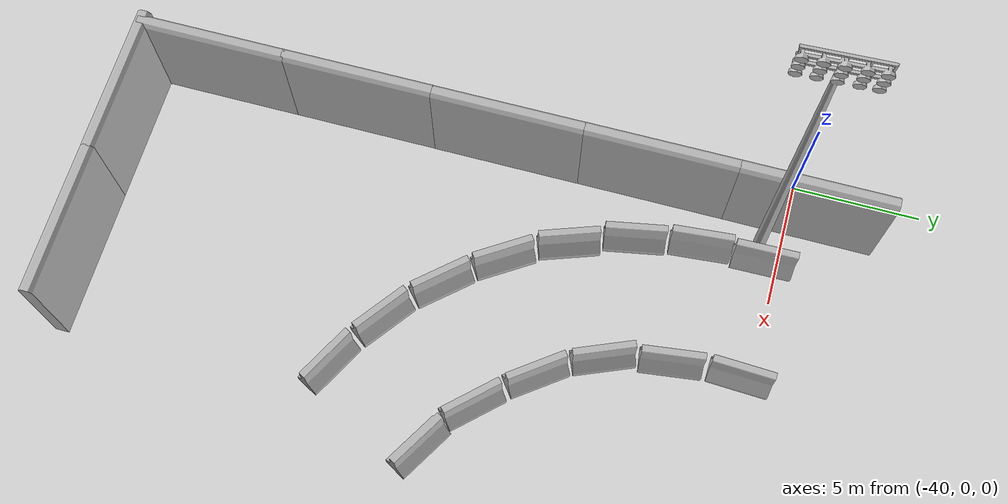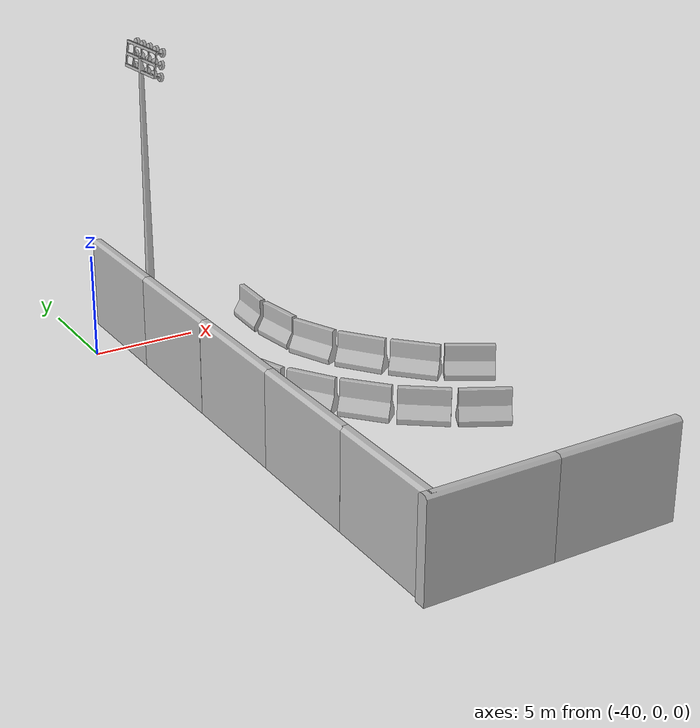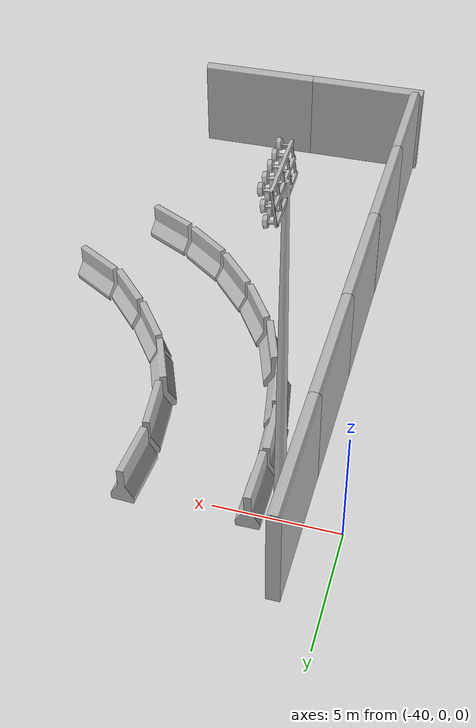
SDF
<sdf version="1.7">
 <world name="default">
  <model name="aws_robomaker_racetrack_StonePier_01_41">
   <frame name="aws_StonePier_01::__model__" attached_to="aws_StonePier_01::body">
    <pose relative_to="__model__">0 0 0 0 -0 0</pose>
   </frame>
   <link name="aws_StonePier_01::body">
    <pose relative_to="aws_StonePier_01::__model__">0 0 0 0 -0 0</pose>
    <inertial>
     <mass>10</mass>
     <inertia><ixx>0</ixx><ixy>0</ixy><ixz>0</ixz><iyy>0</iyy><iyz>0</iyz><izz>0</izz></inertia>
    </inertial>
    <visual name="visual">
     <geometry>
      <mesh><uri>file://models/aws_robomaker_racetrack_StonePier_01/meshes/aws_StonePier_01_visual.DAE</uri></mesh>
     </geometry>
     <material><shader type="pixel"><normal_map>__default__</normal_map></shader></material>
     <meta><layer>0</layer></meta>
    </visual>
    <collision name="collision_0">
     <geometry>
      <mesh>
       <uri>file://models/aws_robomaker_racetrack_StonePier_01/meshes/aws_StonePier_01_collision.DAE</uri>
       <scale>1 1 1</scale>
      </mesh>
     </geometry>
     <surface>
      <friction>
       <ode><mu>1</mu><mu2>1</mu2><fdir1>0 0 0</fdir1><slip1>0</slip1><slip2>0</slip2></ode>
       <torsional>
        <coefficient>1</coefficient>
        <patch_radius>0</patch_radius>
        <surface_radius>0</surface_radius>
        <use_patch_radius>1</use_patch_radius>
        <ode><slip>0</slip></ode>
       </torsional>
      </friction>
      <bounce><restitution_coefficient>0</restitution_coefficient><threshold>1e+06</threshold></bounce>
      <contact>
       <collide_without_contact>0</collide_without_contact>
       <collide_without_contact_bitmask>1</collide_without_contact_bitmask>
       <collide_bitmask>1</collide_bitmask>
       <ode>
        <soft_cfm>0</soft_cfm>
        <soft_erp>0.2</soft_erp>
        <kp>1e+13</kp>
        <kd>1</kd>
        <max_vel>0.01</max_vel>
        <min_depth>0</min_depth>
       </ode>
       <bullet>
        <split_impulse>1</split_impulse>
        <split_impulse_penetration_threshold>-0.01</split_impulse_penetration_threshold>
        <soft_cfm>0</soft_cfm>
        <soft_erp>0.2</soft_erp>
        <kp>1e+13</kp>
        <kd>1</kd>
       </bullet>
      </contact>
     </surface>
    </collision>
   </link>
   <static>1</static>
   <pose>-26.1157 -11.2238 0.054 0 0 -0.528829</pose>
  </model>
  <model name="aws_robomaker_racetrack_StonePier_01_42">
   <frame name="aws_StonePier_01::__model__" attached_to="aws_StonePier_01::body">
    <pose relative_to="__model__">0 0 0 0 -0 0</pose>
   </frame>
   <link name="aws_StonePier_01::body">
    <pose relative_to="aws_StonePier_01::__model__">0 0 0 0 -0 0</pose>
    <inertial>
     <mass>10</mass>
     <inertia><ixx>0</ixx><ixy>0</ixy><ixz>0</ixz><iyy>0</iyy><iyz>0</iyz><izz>0</izz></inertia>
    </inertial>
    <visual name="visual">
     <geometry>
      <mesh><uri>file://models/aws_robomaker_racetrack_StonePier_01/meshes/aws_StonePier_01_visual.DAE</uri></mesh>
     </geometry>
     <material><shader type="pixel"><normal_map>__default__</normal_map></shader></material>
     <meta><layer>0</layer></meta>
    </visual>
    <collision name="collision_0">
     <geometry>
      <mesh>
       <uri>file://models/aws_robomaker_racetrack_StonePier_01/meshes/aws_StonePier_01_collision.DAE</uri>
       <scale>1 1 1</scale>
      </mesh>
     </geometry>
     <surface>
      <friction>
       <ode><mu>1</mu><mu2>1</mu2><fdir1>0 0 0</fdir1><slip1>0</slip1><slip2>0</slip2></ode>
       <torsional>
        <coefficient>1</coefficient>
        <patch_radius>0</patch_radius>
        <surface_radius>0</surface_radius>
        <use_patch_radius>1</use_patch_radius>
        <ode><slip>0</slip></ode>
       </torsional>
      </friction>
      <bounce><restitution_coefficient>0</restitution_coefficient><threshold>1e+06</threshold></bounce>
      <contact>
       <collide_without_contact>0</collide_without_contact>
       <collide_without_contact_bitmask>1</collide_without_contact_bitmask>
       <collide_bitmask>1</collide_bitmask>
       <ode>
        <soft_cfm>0</soft_cfm>
        <soft_erp>0.2</soft_erp>
        <kp>1e+13</kp>
        <kd>1</kd>
        <max_vel>0.01</max_vel>
        <min_depth>0</min_depth>
       </ode>
       <bullet>
        <split_impulse>1</split_impulse>
        <split_impulse_penetration_threshold>-0.01</split_impulse_penetration_threshold>
        <soft_cfm>0</soft_cfm>
        <soft_erp>0.2</soft_erp>
        <kp>1e+13</kp>
        <kd>1</kd>
       </bullet>
      </contact>
     </surface>
    </collision>
   </link>
   <static>1</static>
   <pose>-28.1466 -9.75745 0.054 0 0 -0.811127</pose>
  </model>
  <model name="aws_robomaker_racetrack_StonePier_01_43">
   <frame name="aws_StonePier_01::__model__" attached_to="aws_StonePier_01::body">
    <pose relative_to="__model__">0 0 0 0 -0 0</pose>
   </frame>
   <link name="aws_StonePier_01::body">
    <pose relative_to="aws_StonePier_01::__model__">0 0 0 0 -0 0</pose>
    <inertial>
     <mass>10</mass>
     <inertia><ixx>0</ixx><ixy>0</ixy><ixz>0</ixz><iyy>0</iyy><iyz>0</iyz><izz>0</izz></inertia>
    </inertial>
    <visual name="visual">
     <geometry>
      <mesh><uri>file://models/aws_robomaker_racetrack_StonePier_01/meshes/aws_StonePier_01_visual.DAE</uri></mesh>
     </geometry>
     <material><shader type="pixel"><normal_map>__default__</normal_map></shader></material>
     <meta><layer>0</layer></meta>
    </visual>
    <collision name="collision_0">
     <geometry>
      <mesh>
       <uri>file://models/aws_robomaker_racetrack_StonePier_01/meshes/aws_StonePier_01_collision.DAE</uri>
       <scale>1 1 1</scale>
      </mesh>
     </geometry>
     <surface>
      <friction>
       <ode><mu>1</mu><mu2>1</mu2><fdir1>0 0 0</fdir1><slip1>0</slip1><slip2>0</slip2></ode>
       <torsional>
        <coefficient>1</coefficient>
        <patch_radius>0</patch_radius>
        <surface_radius>0</surface_radius>
        <use_patch_radius>1</use_patch_radius>
        <ode><slip>0</slip></ode>
       </torsional>
      </friction>
      <bounce><restitution_coefficient>0</restitution_coefficient><threshold>1e+06</threshold></bounce>
      <contact>
       <collide_without_contact>0</collide_without_contact>
       <collide_without_contact_bitmask>1</collide_without_contact_bitmask>
       <collide_bitmask>1</collide_bitmask>
       <ode>
        <soft_cfm>0</soft_cfm>
        <soft_erp>0.2</soft_erp>
        <kp>1e+13</kp>
        <kd>1</kd>
        <max_vel>0.01</max_vel>
        <min_depth>0</min_depth>
       </ode>
       <bullet>
        <split_impulse>1</split_impulse>
        <split_impulse_penetration_threshold>-0.01</split_impulse_penetration_threshold>
        <soft_cfm>0</soft_cfm>
        <soft_erp>0.2</soft_erp>
        <kp>1e+13</kp>
        <kd>1</kd>
       </bullet>
      </contact>
     </surface>
    </collision>
   </link>
   <static>1</static>
   <pose>-29.8572 -7.79098 0.054 0 0 -0.924577</pose>
  </model>
  <model name="aws_robomaker_racetrack_StonePier_01_44">
   <frame name="aws_StonePier_01::__model__" attached_to="aws_StonePier_01::body">
    <pose relative_to="__model__">0 0 0 0 -0 0</pose>
   </frame>
   <link name="aws_StonePier_01::body">
    <pose relative_to="aws_StonePier_01::__model__">0 0 0 0 -0 0</pose>
    <inertial>
     <mass>10</mass>
     <inertia><ixx>0</ixx><ixy>0</ixy><ixz>0</ixz><iyy>0</iyy><iyz>0</iyz><izz>0</izz></inertia>
    </inertial>
    <visual name="visual">
     <geometry>
      <mesh><uri>file://models/aws_robomaker_racetrack_StonePier_01/meshes/aws_StonePier_01_visual.DAE</uri></mesh>
     </geometry>
     <material><shader type="pixel"><normal_map>__default__</normal_map></shader></material>
     <meta><layer>0</layer></meta>
    </visual>
    <collision name="collision_0">
     <geometry>
      <mesh>
       <uri>file://models/aws_robomaker_racetrack_StonePier_01/meshes/aws_StonePier_01_collision.DAE</uri>
       <scale>1 1 1</scale>
      </mesh>
     </geometry>
     <surface>
      <friction>
       <ode><mu>1</mu><mu2>1</mu2><fdir1>0 0 0</fdir1><slip1>0</slip1><slip2>0</slip2></ode>
       <torsional>
        <coefficient>1</coefficient>
        <patch_radius>0</patch_radius>
        <surface_radius>0</surface_radius>
        <use_patch_radius>1</use_patch_radius>
        <ode><slip>0</slip></ode>
       </torsional>
      </friction>
      <bounce><restitution_coefficient>0</restitution_coefficient><threshold>1e+06</threshold></bounce>
      <contact>
       <collide_without_contact>0</collide_without_contact>
       <collide_without_contact_bitmask>1</collide_without_contact_bitmask>
       <collide_bitmask>1</collide_bitmask>
       <ode>
        <soft_cfm>0</soft_cfm>
        <soft_erp>0.2</soft_erp>
        <kp>1e+13</kp>
        <kd>1</kd>
        <max_vel>0.01</max_vel>
        <min_depth>0</min_depth>
       </ode>
       <bullet>
        <split_impulse>1</split_impulse>
        <split_impulse_penetration_threshold>-0.01</split_impulse_penetration_threshold>
        <soft_cfm>0</soft_cfm>
        <soft_erp>0.2</soft_erp>
        <kp>1e+13</kp>
        <kd>1</kd>
       </bullet>
      </contact>
     </surface>
    </collision>
   </link>
   <static>1</static>
   <pose>-31.1336 -5.56451 0.054 0 0 -1.16956</pose>
  </model>
  <model name="aws_robomaker_racetrack_StonePier_01_45">
   <frame name="aws_StonePier_01::__model__" attached_to="aws_StonePier_01::body">
    <pose relative_to="__model__">0 0 0 0 -0 0</pose>
   </frame>
   <link name="aws_StonePier_01::body">
    <pose relative_to="aws_StonePier_01::__model__">0 0 0 0 -0 0</pose>
    <inertial>
     <mass>10</mass>
     <inertia><ixx>0</ixx><ixy>0</ixy><ixz>0</ixz><iyy>0</iyy><iyz>0</iyz><izz>0</izz></inertia>
    </inertial>
    <visual name="visual">
     <geometry>
      <mesh><uri>file://models/aws_robomaker_racetrack_StonePier_01/meshes/aws_StonePier_01_visual.DAE</uri></mesh>
     </geometry>
     <material><shader type="pixel"><normal_map>__default__</normal_map></shader></material>
     <meta><layer>0</layer></meta>
    </visual>
    <collision name="collision_0">
     <geometry>
      <mesh>
       <uri>file://models/aws_robomaker_racetrack_StonePier_01/meshes/aws_StonePier_01_collision.DAE</uri>
       <scale>1 1 1</scale>
      </mesh>
     </geometry>
     <surface>
      <friction>
       <ode><mu>1</mu><mu2>1</mu2><fdir1>0 0 0</fdir1><slip1>0</slip1><slip2>0</slip2></ode>
       <torsional>
        <coefficient>1</coefficient>
        <patch_radius>0</patch_radius>
        <surface_radius>0</surface_radius>
        <use_patch_radius>1</use_patch_radius>
        <ode><slip>0</slip></ode>
       </torsional>
      </friction>
      <bounce><restitution_coefficient>0</restitution_coefficient><threshold>1e+06</threshold></bounce>
      <contact>
       <collide_without_contact>0</collide_without_contact>
       <collide_without_contact_bitmask>1</collide_without_contact_bitmask>
       <collide_bitmask>1</collide_bitmask>
       <ode>
        <soft_cfm>0</soft_cfm>
        <soft_erp>0.2</soft_erp>
        <kp>1e+13</kp>
        <kd>1</kd>
        <max_vel>0.01</max_vel>
        <min_depth>0</min_depth>
       </ode>
       <bullet>
        <split_impulse>1</split_impulse>
        <split_impulse_penetration_threshold>-0.01</split_impulse_penetration_threshold>
        <soft_cfm>0</soft_cfm>
        <soft_erp>0.2</soft_erp>
        <kp>1e+13</kp>
        <kd>1</kd>
       </bullet>
      </contact>
     </surface>
    </collision>
   </link>
   <static>1</static>
   <pose>-31.6395 -3.07904 0.054 0 0 -1.43795</pose>
  </model>
  <model name="aws_robomaker_racetrack_StonePier_01_46">
   <frame name="aws_StonePier_01::__model__" attached_to="aws_StonePier_01::body">
    <pose relative_to="__model__">0 0 0 0 -0 0</pose>
   </frame>
   <link name="aws_StonePier_01::body">
    <pose relative_to="aws_StonePier_01::__model__">0 0 0 0 -0 0</pose>
    <inertial>
     <mass>10</mass>
     <inertia><ixx>0</ixx><ixy>0</ixy><ixz>0</ixz><iyy>0</iyy><iyz>0</iyz><izz>0</izz></inertia>
    </inertial>
    <visual name="visual">
     <geometry>
      <mesh><uri>file://models/aws_robomaker_racetrack_StonePier_01/meshes/aws_StonePier_01_visual.DAE</uri></mesh>
     </geometry>
     <material><shader type="pixel"><normal_map>__default__</normal_map></shader></material>
     <meta><layer>0</layer></meta>
    </visual>
    <collision name="collision_0">
     <geometry>
      <mesh>
       <uri>file://models/aws_robomaker_racetrack_StonePier_01/meshes/aws_StonePier_01_collision.DAE</uri>
       <scale>1 1 1</scale>
      </mesh>
     </geometry>
     <surface>
      <friction>
       <ode><mu>1</mu><mu2>1</mu2><fdir1>0 0 0</fdir1><slip1>0</slip1><slip2>0</slip2></ode>
       <torsional>
        <coefficient>1</coefficient>
        <patch_radius>0</patch_radius>
        <surface_radius>0</surface_radius>
        <use_patch_radius>1</use_patch_radius>
        <ode><slip>0</slip></ode>
       </torsional>
      </friction>
      <bounce><restitution_coefficient>0</restitution_coefficient><threshold>1e+06</threshold></bounce>
      <contact>
       <collide_without_contact>0</collide_without_contact>
       <collide_without_contact_bitmask>1</collide_without_contact_bitmask>
       <collide_bitmask>1</collide_bitmask>
       <ode>
        <soft_cfm>0</soft_cfm>
        <soft_erp>0.2</soft_erp>
        <kp>1e+13</kp>
        <kd>1</kd>
        <max_vel>0.01</max_vel>
        <min_depth>0</min_depth>
       </ode>
       <bullet>
        <split_impulse>1</split_impulse>
        <split_impulse_penetration_threshold>-0.01</split_impulse_penetration_threshold>
        <soft_cfm>0</soft_cfm>
        <soft_erp>0.2</soft_erp>
        <kp>1e+13</kp>
        <kd>1</kd>
       </bullet>
      </contact>
     </surface>
    </collision>
   </link>
   <static>1</static>
   <pose>-31.7709 -0.48849 0.054 0 0 -1.61074</pose>
  </model>
  <model name="aws_robomaker_racetrack_StonePier_01_52">
   <frame name="aws_StonePier_01::__model__" attached_to="aws_StonePier_01::body">
    <pose relative_to="__model__">0 0 0 0 -0 0</pose>
   </frame>
   <link name="aws_StonePier_01::body">
    <pose relative_to="aws_StonePier_01::__model__">0 0 0 0 -0 0</pose>
    <inertial>
     <mass>10</mass>
     <inertia><ixx>0</ixx><ixy>0</ixy><ixz>0</ixz><iyy>0</iyy><iyz>0</iyz><izz>0</izz></inertia>
    </inertial>
    <visual name="visual">
     <geometry>
      <mesh><uri>file://models/aws_robomaker_racetrack_StonePier_01/meshes/aws_StonePier_01_visual.DAE</uri></mesh>
     </geometry>
     <material><shader type="pixel"><normal_map>__default__</normal_map></shader></material>
     <meta><layer>0</layer></meta>
    </visual>
    <collision name="collision_0">
     <geometry>
      <mesh>
       <uri>file://models/aws_robomaker_racetrack_StonePier_01/meshes/aws_StonePier_01_collision.DAE</uri>
       <scale>1 1 1</scale>
      </mesh>
     </geometry>
     <surface>
      <friction>
       <ode><mu>1</mu><mu2>1</mu2><fdir1>0 0 0</fdir1><slip1>0</slip1><slip2>0</slip2></ode>
       <torsional>
        <coefficient>1</coefficient>
        <patch_radius>0</patch_radius>
        <surface_radius>0</surface_radius>
        <use_patch_radius>1</use_patch_radius>
        <ode><slip>0</slip></ode>
       </torsional>
      </friction>
      <bounce><restitution_coefficient>0</restitution_coefficient><threshold>1e+06</threshold></bounce>
      <contact>
       <collide_without_contact>0</collide_without_contact>
       <collide_without_contact_bitmask>1</collide_without_contact_bitmask>
       <collide_bitmask>1</collide_bitmask>
       <ode>
        <soft_cfm>0</soft_cfm>
        <soft_erp>0.2</soft_erp>
        <kp>1e+13</kp>
        <kd>1</kd>
        <max_vel>0.01</max_vel>
        <min_depth>0</min_depth>
       </ode>
       <bullet>
        <split_impulse>1</split_impulse>
        <split_impulse_penetration_threshold>-0.01</split_impulse_penetration_threshold>
        <soft_cfm>0</soft_cfm>
        <soft_erp>0.2</soft_erp>
        <kp>1e+13</kp>
        <kd>1</kd>
       </bullet>
      </contact>
     </surface>
    </collision>
   </link>
   <static>1</static>
   <pose>-28.2666 -15.3279 0.054 0 0.00036 -0.483595</pose>
  </model>
  <model name="aws_robomaker_racetrack_StonePier_01_53">
   <frame name="aws_StonePier_01::__model__" attached_to="aws_StonePier_01::body">
    <pose relative_to="__model__">0 0 0 0 -0 0</pose>
   </frame>
   <link name="aws_StonePier_01::body">
    <pose relative_to="aws_StonePier_01::__model__">0 0 0 0 -0 0</pose>
    <inertial>
     <mass>10</mass>
     <inertia><ixx>0</ixx><ixy>0</ixy><ixz>0</ixz><iyy>0</iyy><iyz>0</iyz><izz>0</izz></inertia>
    </inertial>
    <visual name="visual">
     <geometry>
      <mesh><uri>file://models/aws_robomaker_racetrack_StonePier_01/meshes/aws_StonePier_01_visual.DAE</uri></mesh>
     </geometry>
     <material><shader type="pixel"><normal_map>__default__</normal_map></shader></material>
     <meta><layer>0</layer></meta>
    </visual>
    <collision name="collision_0">
     <geometry>
      <mesh>
       <uri>file://models/aws_robomaker_racetrack_StonePier_01/meshes/aws_StonePier_01_collision.DAE</uri>
       <scale>1 1 1</scale>
      </mesh>
     </geometry>
     <surface>
      <friction>
       <ode><mu>1</mu><mu2>1</mu2><fdir1>0 0 0</fdir1><slip1>0</slip1><slip2>0</slip2></ode>
       <torsional>
        <coefficient>1</coefficient>
        <patch_radius>0</patch_radius>
        <surface_radius>0</surface_radius>
        <use_patch_radius>1</use_patch_radius>
        <ode><slip>0</slip></ode>
       </torsional>
      </friction>
      <bounce><restitution_coefficient>0</restitution_coefficient><threshold>1e+06</threshold></bounce>
      <contact>
       <collide_without_contact>0</collide_without_contact>
       <collide_without_contact_bitmask>1</collide_without_contact_bitmask>
       <collide_bitmask>1</collide_bitmask>
       <ode>
        <soft_cfm>0</soft_cfm>
        <soft_erp>0.2</soft_erp>
        <kp>1e+13</kp>
        <kd>1</kd>
        <max_vel>0.01</max_vel>
        <min_depth>0</min_depth>
       </ode>
       <bullet>
        <split_impulse>1</split_impulse>
        <split_impulse_penetration_threshold>-0.01</split_impulse_penetration_threshold>
        <soft_cfm>0</soft_cfm>
        <soft_erp>0.2</soft_erp>
        <kp>1e+13</kp>
        <kd>1</kd>
       </bullet>
      </contact>
     </surface>
    </collision>
   </link>
   <static>1</static>
   <pose>-30.4813 -13.931 0.054 0 -0 2.50624</pose>
  </model>
  <model name="aws_robomaker_racetrack_StonePier_01_54">
   <frame name="aws_StonePier_01::__model__" attached_to="aws_StonePier_01::body">
    <pose relative_to="__model__">0 0 0 0 -0 0</pose>
   </frame>
   <link name="aws_StonePier_01::body">
    <pose relative_to="aws_StonePier_01::__model__">0 0 0 0 -0 0</pose>
    <inertial>
     <mass>10</mass>
     <inertia><ixx>0</ixx><ixy>0</ixy><ixz>0</ixz><iyy>0</iyy><iyz>0</iyz><izz>0</izz></inertia>
    </inertial>
    <visual name="visual">
     <geometry>
      <mesh><uri>file://models/aws_robomaker_racetrack_StonePier_01/meshes/aws_StonePier_01_visual.DAE</uri></mesh>
     </geometry>
     <material><shader type="pixel"><normal_map>__default__</normal_map></shader></material>
     <meta><layer>0</layer></meta>
    </visual>
    <collision name="collision_0">
     <geometry>
      <mesh>
       <uri>file://models/aws_robomaker_racetrack_StonePier_01/meshes/aws_StonePier_01_collision.DAE</uri>
       <scale>1 1 1</scale>
      </mesh>
     </geometry>
     <surface>
      <friction>
       <ode><mu>1</mu><mu2>1</mu2><fdir1>0 0 0</fdir1><slip1>0</slip1><slip2>0</slip2></ode>
       <torsional>
        <coefficient>1</coefficient>
        <patch_radius>0</patch_radius>
        <surface_radius>0</surface_radius>
        <use_patch_radius>1</use_patch_radius>
        <ode><slip>0</slip></ode>
       </torsional>
      </friction>
      <bounce><restitution_coefficient>0</restitution_coefficient><threshold>1e+06</threshold></bounce>
      <contact>
       <collide_without_contact>0</collide_without_contact>
       <collide_without_contact_bitmask>1</collide_without_contact_bitmask>
       <collide_bitmask>1</collide_bitmask>
       <ode>
        <soft_cfm>0</soft_cfm>
        <soft_erp>0.2</soft_erp>
        <kp>1e+13</kp>
        <kd>1</kd>
        <max_vel>0.01</max_vel>
        <min_depth>0</min_depth>
       </ode>
       <bullet>
        <split_impulse>1</split_impulse>
        <split_impulse_penetration_threshold>-0.01</split_impulse_penetration_threshold>
        <soft_cfm>0</soft_cfm>
        <soft_erp>0.2</soft_erp>
        <kp>1e+13</kp>
        <kd>1</kd>
       </bullet>
      </contact>
     </surface>
    </collision>
   </link>
   <static>1</static>
   <pose>-32.3931 -12.181 0.054 0 -0 2.30053</pose>
  </model>
  <model name="aws_robomaker_racetrack_StonePier_01_55">
   <frame name="aws_StonePier_01::__model__" attached_to="aws_StonePier_01::body">
    <pose relative_to="__model__">0 0 0 0 -0 0</pose>
   </frame>
   <link name="aws_StonePier_01::body">
    <pose relative_to="aws_StonePier_01::__model__">0 0 0 0 -0 0</pose>
    <inertial>
     <mass>10</mass>
     <inertia><ixx>0</ixx><ixy>0</ixy><ixz>0</ixz><iyy>0</iyy><iyz>0</iyz><izz>0</izz></inertia>
    </inertial>
    <visual name="visual">
     <geometry>
      <mesh><uri>file://models/aws_robomaker_racetrack_StonePier_01/meshes/aws_StonePier_01_visual.DAE</uri></mesh>
     </geometry>
     <material><shader type="pixel"><normal_map>__default__</normal_map></shader></material>
     <meta><layer>0</layer></meta>
    </visual>
    <collision name="collision_0">
     <geometry>
      <mesh>
       <uri>file://models/aws_robomaker_racetrack_StonePier_01/meshes/aws_StonePier_01_collision.DAE</uri>
       <scale>1 1 1</scale>
      </mesh>
     </geometry>
     <surface>
      <friction>
       <ode><mu>1</mu><mu2>1</mu2><fdir1>0 0 0</fdir1><slip1>0</slip1><slip2>0</slip2></ode>
       <torsional>
        <coefficient>1</coefficient>
        <patch_radius>0</patch_radius>
        <surface_radius>0</surface_radius>
        <use_patch_radius>1</use_patch_radius>
        <ode><slip>0</slip></ode>
       </torsional>
      </friction>
      <bounce><restitution_coefficient>0</restitution_coefficient><threshold>1e+06</threshold></bounce>
      <contact>
       <collide_without_contact>0</collide_without_contact>
       <collide_without_contact_bitmask>1</collide_without_contact_bitmask>
       <collide_bitmask>1</collide_bitmask>
       <ode>
        <soft_cfm>0</soft_cfm>
        <soft_erp>0.2</soft_erp>
        <kp>1e+13</kp>
        <kd>1</kd>
        <max_vel>0.01</max_vel>
        <min_depth>0</min_depth>
       </ode>
       <bullet>
        <split_impulse>1</split_impulse>
        <split_impulse_penetration_threshold>-0.01</split_impulse_penetration_threshold>
        <soft_cfm>0</soft_cfm>
        <soft_erp>0.2</soft_erp>
        <kp>1e+13</kp>
        <kd>1</kd>
       </bullet>
      </contact>
     </surface>
    </collision>
   </link>
   <static>1</static>
   <pose>-33.9725 -10.1825 0.054 0 -0 2.15404</pose>
  </model>
  <model name="aws_robomaker_racetrack_StonePier_01_56">
   <frame name="aws_StonePier_01::__model__" attached_to="aws_StonePier_01::body">
    <pose relative_to="__model__">0 0 0 0 -0 0</pose>
   </frame>
   <link name="aws_StonePier_01::body">
    <pose relative_to="aws_StonePier_01::__model__">0 0 0 0 -0 0</pose>
    <inertial>
     <mass>10</mass>
     <inertia><ixx>0</ixx><ixy>0</ixy><ixz>0</ixz><iyy>0</iyy><iyz>0</iyz><izz>0</izz></inertia>
    </inertial>
    <visual name="visual">
     <geometry>
      <mesh><uri>file://models/aws_robomaker_racetrack_StonePier_01/meshes/aws_StonePier_01_visual.DAE</uri></mesh>
     </geometry>
     <material><shader type="pixel"><normal_map>__default__</normal_map></shader></material>
     <meta><layer>0</layer></meta>
    </visual>
    <collision name="collision_0">
     <geometry>
      <mesh>
       <uri>file://models/aws_robomaker_racetrack_StonePier_01/meshes/aws_StonePier_01_collision.DAE</uri>
       <scale>1 1 1</scale>
      </mesh>
     </geometry>
     <surface>
      <friction>
       <ode><mu>1</mu><mu2>1</mu2><fdir1>0 0 0</fdir1><slip1>0</slip1><slip2>0</slip2></ode>
       <torsional>
        <coefficient>1</coefficient>
        <patch_radius>0</patch_radius>
        <surface_radius>0</surface_radius>
        <use_patch_radius>1</use_patch_radius>
        <ode><slip>0</slip></ode>
       </torsional>
      </friction>
      <bounce><restitution_coefficient>0</restitution_coefficient><threshold>1e+06</threshold></bounce>
      <contact>
       <collide_without_contact>0</collide_without_contact>
       <collide_without_contact_bitmask>1</collide_without_contact_bitmask>
       <collide_bitmask>1</collide_bitmask>
       <ode>
        <soft_cfm>0</soft_cfm>
        <soft_erp>0.2</soft_erp>
        <kp>1e+13</kp>
        <kd>1</kd>
        <max_vel>0.01</max_vel>
        <min_depth>0</min_depth>
       </ode>
       <bullet>
        <split_impulse>1</split_impulse>
        <split_impulse_penetration_threshold>-0.01</split_impulse_penetration_threshold>
        <soft_cfm>0</soft_cfm>
        <soft_erp>0.2</soft_erp>
        <kp>1e+13</kp>
        <kd>1</kd>
       </bullet>
      </contact>
     </surface>
    </collision>
   </link>
   <static>1</static>
   <pose>-35.2144 -7.92381 0.054 0 -0 1.91826</pose>
  </model>
  <model name="aws_robomaker_racetrack_StonePier_01_57">
   <frame name="aws_StonePier_01::__model__" attached_to="aws_StonePier_01::body">
    <pose relative_to="__model__">0 0 0 0 -0 0</pose>
   </frame>
   <link name="aws_StonePier_01::body">
    <pose relative_to="aws_StonePier_01::__model__">0 0 0 0 -0 0</pose>
    <inertial>
     <mass>10</mass>
     <inertia><ixx>0</ixx><ixy>0</ixy><ixz>0</ixz><iyy>0</iyy><iyz>0</iyz><izz>0</izz></inertia>
    </inertial>
    <visual name="visual">
     <geometry>
      <mesh><uri>file://models/aws_robomaker_racetrack_StonePier_01/meshes/aws_StonePier_01_visual.DAE</uri></mesh>
     </geometry>
     <material><shader type="pixel"><normal_map>__default__</normal_map></shader></material>
     <meta><layer>0</layer></meta>
    </visual>
    <collision name="collision_0">
     <geometry>
      <mesh>
       <uri>file://models/aws_robomaker_racetrack_StonePier_01/meshes/aws_StonePier_01_collision.DAE</uri>
       <scale>1 1 1</scale>
      </mesh>
     </geometry>
     <surface>
      <friction>
       <ode><mu>1</mu><mu2>1</mu2><fdir1>0 0 0</fdir1><slip1>0</slip1><slip2>0</slip2></ode>
       <torsional>
        <coefficient>1</coefficient>
        <patch_radius>0</patch_radius>
        <surface_radius>0</surface_radius>
        <use_patch_radius>1</use_patch_radius>
        <ode><slip>0</slip></ode>
       </torsional>
      </friction>
      <bounce><restitution_coefficient>0</restitution_coefficient><threshold>1e+06</threshold></bounce>
      <contact>
       <collide_without_contact>0</collide_without_contact>
       <collide_without_contact_bitmask>1</collide_without_contact_bitmask>
       <collide_bitmask>1</collide_bitmask>
       <ode>
        <soft_cfm>0</soft_cfm>
        <soft_erp>0.2</soft_erp>
        <kp>1e+13</kp>
        <kd>1</kd>
        <max_vel>0.01</max_vel>
        <min_depth>0</min_depth>
       </ode>
       <bullet>
        <split_impulse>1</split_impulse>
        <split_impulse_penetration_threshold>-0.01</split_impulse_penetration_threshold>
        <soft_cfm>0</soft_cfm>
        <soft_erp>0.2</soft_erp>
        <kp>1e+13</kp>
        <kd>1</kd>
       </bullet>
      </contact>
     </surface>
    </collision>
   </link>
   <static>1</static>
   <pose>-36.4999 -3.03273 0.054 -0 0.00036 -1.47965</pose>
  </model>
  <model name="aws_robomaker_racetrack_StonePier_01_58">
   <frame name="aws_StonePier_01::__model__" attached_to="aws_StonePier_01::body">
    <pose relative_to="__model__">0 0 0 0 -0 0</pose>
   </frame>
   <link name="aws_StonePier_01::body">
    <pose relative_to="aws_StonePier_01::__model__">0 0 0 0 -0 0</pose>
    <inertial>
     <mass>10</mass>
     <inertia><ixx>0</ixx><ixy>0</ixy><ixz>0</ixz><iyy>0</iyy><iyz>0</iyz><izz>0</izz></inertia>
    </inertial>
    <visual name="visual">
     <geometry>
      <mesh><uri>file://models/aws_robomaker_racetrack_StonePier_01/meshes/aws_StonePier_01_visual.DAE</uri></mesh>
     </geometry>
     <material><shader type="pixel"><normal_map>__default__</normal_map></shader></material>
     <meta><layer>0</layer></meta>
    </visual>
    <collision name="collision_0">
     <geometry>
      <mesh>
       <uri>file://models/aws_robomaker_racetrack_StonePier_01/meshes/aws_StonePier_01_collision.DAE</uri>
       <scale>1 1 1</scale>
      </mesh>
     </geometry>
     <surface>
      <friction>
       <ode><mu>1</mu><mu2>1</mu2><fdir1>0 0 0</fdir1><slip1>0</slip1><slip2>0</slip2></ode>
       <torsional>
        <coefficient>1</coefficient>
        <patch_radius>0</patch_radius>
        <surface_radius>0</surface_radius>
        <use_patch_radius>1</use_patch_radius>
        <ode><slip>0</slip></ode>
       </torsional>
      </friction>
      <bounce><restitution_coefficient>0</restitution_coefficient><threshold>1e+06</threshold></bounce>
      <contact>
       <collide_without_contact>0</collide_without_contact>
       <collide_without_contact_bitmask>1</collide_without_contact_bitmask>
       <collide_bitmask>1</collide_bitmask>
       <ode>
        <soft_cfm>0</soft_cfm>
        <soft_erp>0.2</soft_erp>
        <kp>1e+13</kp>
        <kd>1</kd>
        <max_vel>0.01</max_vel>
        <min_depth>0</min_depth>
       </ode>
       <bullet>
        <split_impulse>1</split_impulse>
        <split_impulse_penetration_threshold>-0.01</split_impulse_penetration_threshold>
        <soft_cfm>0</soft_cfm>
        <soft_erp>0.2</soft_erp>
        <kp>1e+13</kp>
        <kd>1</kd>
       </bullet>
      </contact>
     </surface>
    </collision>
   </link>
   <static>1</static>
   <pose>-36.5369 -0.578473 -0.000468 -0 0.000348 1.59189</pose>
  </model>
  <model name="aws_robomaker_racetrack_StonePier_01_59">
   <frame name="aws_StonePier_01::__model__" attached_to="aws_StonePier_01::body">
    <pose relative_to="__model__">0 0 0 0 -0 0</pose>
   </frame>
   <link name="aws_StonePier_01::body">
    <pose relative_to="aws_StonePier_01::__model__">0 0 0 0 -0 0</pose>
    <inertial>
     <mass>10</mass>
     <inertia><ixx>0</ixx><ixy>0</ixy><ixz>0</ixz><iyy>0</iyy><iyz>0</iyz><izz>0</izz></inertia>
    </inertial>
    <visual name="visual">
     <geometry>
      <mesh><uri>file://models/aws_robomaker_racetrack_StonePier_01/meshes/aws_StonePier_01_visual.DAE</uri></mesh>
     </geometry>
     <material><shader type="pixel"><normal_map>__default__</normal_map></shader></material>
     <meta><layer>0</layer></meta>
    </visual>
    <collision name="collision_0">
     <geometry>
      <mesh>
       <uri>file://models/aws_robomaker_racetrack_StonePier_01/meshes/aws_StonePier_01_collision.DAE</uri>
       <scale>1 1 1</scale>
      </mesh>
     </geometry>
     <surface>
      <friction>
       <ode><mu>1</mu><mu2>1</mu2><fdir1>0 0 0</fdir1><slip1>0</slip1><slip2>0</slip2></ode>
       <torsional>
        <coefficient>1</coefficient>
        <patch_radius>0</patch_radius>
        <surface_radius>0</surface_radius>
        <use_patch_radius>1</use_patch_radius>
        <ode><slip>0</slip></ode>
       </torsional>
      </friction>
      <bounce><restitution_coefficient>0</restitution_coefficient><threshold>1e+06</threshold></bounce>
      <contact>
       <collide_without_contact>0</collide_without_contact>
       <collide_without_contact_bitmask>1</collide_without_contact_bitmask>
       <collide_bitmask>1</collide_bitmask>
       <ode>
        <soft_cfm>0</soft_cfm>
        <soft_erp>0.2</soft_erp>
        <kp>1e+13</kp>
        <kd>1</kd>
        <max_vel>0.01</max_vel>
        <min_depth>0</min_depth>
       </ode>
       <bullet>
        <split_impulse>1</split_impulse>
        <split_impulse_penetration_threshold>-0.01</split_impulse_penetration_threshold>
        <soft_cfm>0</soft_cfm>
        <soft_erp>0.2</soft_erp>
        <kp>1e+13</kp>
        <kd>1</kd>
       </bullet>
      </contact>
     </surface>
    </collision>
   </link>
   <static>1</static>
   <pose>-36.0789 -5.53149 0.054 0 -0 1.76121</pose>
  </model>
  <model name="aws_robomaker_racetrack_Light_01_03">
   <frame name="aws_Light_01::__model__" attached_to="aws_Light_01::body">
    <pose relative_to="__model__">0 0 0 0 -0 0</pose>
   </frame>
   <link name="aws_Light_01::body">
    <pose relative_to="aws_Light_01::__model__">0 0 0 0 -0 0</pose>
    <inertial>
     <mass>100</mass>
     <inertia><ixx>1</ixx><ixy>0</ixy><ixz>0</ixz><iyy>1</iyy><iyz>0</iyz><izz>1</izz></inertia>
    </inertial>
    <visual name="visual">
     <geometry>
      <mesh><uri>file://models/aws_robomaker_racetrack_Light_01/meshes/aws_Light_01_visual.DAE</uri></mesh>
     </geometry>
     <material><shader type="pixel"><normal_map>__default__</normal_map></shader></material>
     <meta><layer>0</layer></meta>
    </visual>
    <collision name="collision_0">
     <geometry>
      <mesh>
       <uri>file://models/aws_robomaker_racetrack_Light_01/meshes/aws_Light_01_collision.DAE</uri>
       <scale>1 1 1</scale>
      </mesh>
     </geometry>
     <surface>
      <friction>
       <ode><mu>1</mu><mu2>1</mu2><fdir1>0 0 0</fdir1><slip1>0</slip1><slip2>0</slip2></ode>
       <torsional>
        <coefficient>1</coefficient>
        <patch_radius>0</patch_radius>
        <surface_radius>0</surface_radius>
        <use_patch_radius>1</use_patch_radius>
        <ode><slip>0</slip></ode>
       </torsional>
      </friction>
      <bounce><restitution_coefficient>0</restitution_coefficient><threshold>1e+06</threshold></bounce>
      <contact>
       <collide_without_contact>0</collide_without_contact>
       <collide_without_contact_bitmask>1</collide_without_contact_bitmask>
       <collide_bitmask>1</collide_bitmask>
       <ode>
        <soft_cfm>0</soft_cfm>
        <soft_erp>0.2</soft_erp>
        <kp>1e+13</kp>
        <kd>1</kd>
        <max_vel>0.01</max_vel>
        <min_depth>0</min_depth>
       </ode>
       <bullet>
        <split_impulse>1</split_impulse>
        <split_impulse_penetration_threshold>-0.01</split_impulse_penetration_threshold>
        <soft_cfm>0</soft_cfm>
        <soft_erp>0.2</soft_erp>
        <kp>1e+13</kp>
        <kd>1</kd>
       </bullet>
      </contact>
     </surface>
    </collision>
   </link>
   <static>1</static>
   <pose>-37.2567 -0.808964 0 0 0 -1.52672</pose>
  </model>
  <model name="aws_robomaker_racetrack_Wall_01_09">
   <frame name="aws_Wall_01::__model__" attached_to="aws_Wall_01::body">
    <pose relative_to="__model__">0 0 0 0 -0 0</pose>
   </frame>
   <link name="aws_Wall_01::body">
    <pose relative_to="aws_Wall_01::__model__">0 0 0 0 -0 0</pose>
    <inertial>
     <mass>500</mass>
     <inertia><ixx>1</ixx><ixy>0</ixy><ixz>0</ixz><iyy>1</iyy><iyz>0</iyz><izz>1</izz></inertia>
    </inertial>
    <visual name="visual">
     <geometry>
      <mesh>
       <uri>file://models/aws_robomaker_racetrack_Wall_01/meshes/aws_Wall_01_visual.DAE</uri>
       <scale>2.59853 2.59853 2.59853</scale>
      </mesh>
     </geometry>
     <material><shader type="pixel"><normal_map>__default__</normal_map></shader></material>
     <meta><layer>1</layer></meta>
    </visual>
    <collision name="collision_0">
     <geometry>
      <mesh>
       <uri>file://models/aws_robomaker_racetrack_Wall_01/meshes/aws_Wall_01_collision.DAE</uri>
       <scale>2.59853 2.59853 2.59853</scale>
      </mesh>
     </geometry>
     <surface>
      <friction>
       <ode><mu>1</mu><mu2>1</mu2><fdir1>0 0 0</fdir1><slip1>0</slip1><slip2>0</slip2></ode>
       <torsional>
        <coefficient>1</coefficient>
        <patch_radius>0</patch_radius>
        <surface_radius>0</surface_radius>
        <use_patch_radius>1</use_patch_radius>
        <ode><slip>0</slip></ode>
       </torsional>
      </friction>
      <bounce><restitution_coefficient>0</restitution_coefficient><threshold>1e+06</threshold></bounce>
      <contact>
       <collide_without_contact>0</collide_without_contact>
       <collide_without_contact_bitmask>1</collide_without_contact_bitmask>
       <collide_bitmask>1</collide_bitmask>
       <ode>
        <soft_cfm>0</soft_cfm>
        <soft_erp>0.2</soft_erp>
        <kp>1e+13</kp>
        <kd>1</kd>
        <max_vel>0.01</max_vel>
        <min_depth>0</min_depth>
       </ode>
       <bullet>
        <split_impulse>1</split_impulse>
        <split_impulse_penetration_threshold>-0.01</split_impulse_penetration_threshold>
        <soft_cfm>0</soft_cfm>
        <soft_erp>0.2</soft_erp>
        <kp>1e+13</kp>
        <kd>1</kd>
       </bullet>
      </contact>
     </surface>
    </collision>
   </link>
   <static>1</static>
   <pose>-35.6316 -25.5235 0 0 -0 3.14066</pose>
  </model>
  <model name="aws_robomaker_racetrack_Wall_01_10">
   <frame name="aws_Wall_01::__model__" attached_to="aws_Wall_01::body">
    <pose relative_to="__model__">0 0 0 0 -0 0</pose>
   </frame>
   <link name="aws_Wall_01::body">
    <pose relative_to="aws_Wall_01::__model__">0 0 0 0 -0 0</pose>
    <inertial>
     <mass>500</mass>
     <inertia><ixx>1</ixx><ixy>0</ixy><ixz>0</ixz><iyy>1</iyy><iyz>0</iyz><izz>1</izz></inertia>
    </inertial>
    <visual name="visual">
     <geometry>
      <mesh>
       <uri>file://models/aws_robomaker_racetrack_Wall_01/meshes/aws_Wall_01_visual.DAE</uri>
       <scale>2.59853 2.59853 2.59853</scale>
      </mesh>
     </geometry>
     <material><shader type="pixel"><normal_map>__default__</normal_map></shader></material>
     <meta><layer>1</layer></meta>
    </visual>
    <collision name="collision_0">
     <geometry>
      <mesh>
       <uri>file://models/aws_robomaker_racetrack_Wall_01/meshes/aws_Wall_01_collision.DAE</uri>
       <scale>2.59853 2.59853 2.59853</scale>
      </mesh>
     </geometry>
     <surface>
      <friction>
       <ode><mu>1</mu><mu2>1</mu2><fdir1>0 0 0</fdir1><slip1>0</slip1><slip2>0</slip2></ode>
       <torsional>
        <coefficient>1</coefficient>
        <patch_radius>0</patch_radius>
        <surface_radius>0</surface_radius>
        <use_patch_radius>1</use_patch_radius>
        <ode><slip>0</slip></ode>
       </torsional>
      </friction>
      <bounce><restitution_coefficient>0</restitution_coefficient><threshold>1e+06</threshold></bounce>
      <contact>
       <collide_without_contact>0</collide_without_contact>
       <collide_without_contact_bitmask>1</collide_without_contact_bitmask>
       <collide_bitmask>1</collide_bitmask>
       <ode>
        <soft_cfm>0</soft_cfm>
        <soft_erp>0.2</soft_erp>
        <kp>1e+13</kp>
        <kd>1</kd>
        <max_vel>0.01</max_vel>
        <min_depth>0</min_depth>
       </ode>
       <bullet>
        <split_impulse>1</split_impulse>
        <split_impulse_penetration_threshold>-0.01</split_impulse_penetration_threshold>
        <soft_cfm>0</soft_cfm>
        <soft_erp>0.2</soft_erp>
        <kp>1e+13</kp>
        <kd>1</kd>
       </bullet>
      </contact>
     </surface>
    </collision>
   </link>
   <static>1</static>
   <pose>-29.8183 -25.5224 0 0 -0 0</pose>
  </model>
  <model name="aws_robomaker_racetrack_Wall_01_27">
   <frame name="aws_Wall_01::__model__" attached_to="aws_Wall_01::body">
    <pose relative_to="__model__">0 0 0 0 -0 0</pose>
   </frame>
   <link name="aws_Wall_01::body">
    <pose relative_to="aws_Wall_01::__model__">0 0 0 0 -0 0</pose>
    <inertial>
     <mass>500</mass>
     <inertia><ixx>1</ixx><ixy>0</ixy><ixz>0</ixz><iyy>1</iyy><iyz>0</iyz><izz>1</izz></inertia>
    </inertial>
    <visual name="visual">
     <geometry>
      <mesh>
       <uri>file://models/aws_robomaker_racetrack_Wall_01/meshes/aws_Wall_01_visual.DAE</uri>
       <scale>2.59853 2.59853 2.59853</scale>
      </mesh>
     </geometry>
     <material><shader type="pixel"><normal_map>__default__</normal_map></shader></material>
     <meta><layer>1</layer></meta>
    </visual>
    <collision name="collision_0">
     <geometry>
      <mesh>
       <uri>file://models/aws_robomaker_racetrack_Wall_01/meshes/aws_Wall_01_collision.DAE</uri>
       <scale>2.59853 2.59853 2.59853</scale>
      </mesh>
     </geometry>
     <surface>
      <friction>
       <ode><mu>1</mu><mu2>1</mu2><fdir1>0 0 0</fdir1><slip1>0</slip1><slip2>0</slip2></ode>
       <torsional>
        <coefficient>1</coefficient>
        <patch_radius>0</patch_radius>
        <surface_radius>0</surface_radius>
        <use_patch_radius>1</use_patch_radius>
        <ode><slip>0</slip></ode>
       </torsional>
      </friction>
      <bounce><restitution_coefficient>0</restitution_coefficient><threshold>1e+06</threshold></bounce>
      <contact>
       <collide_without_contact>0</collide_without_contact>
       <collide_without_contact_bitmask>1</collide_without_contact_bitmask>
       <collide_bitmask>1</collide_bitmask>
       <ode>
        <soft_cfm>0</soft_cfm>
        <soft_erp>0.2</soft_erp>
        <kp>1e+13</kp>
        <kd>1</kd>
        <max_vel>0.01</max_vel>
        <min_depth>0</min_depth>
       </ode>
       <bullet>
        <split_impulse>1</split_impulse>
        <split_impulse_penetration_threshold>-0.01</split_impulse_penetration_threshold>
        <soft_cfm>0</soft_cfm>
        <soft_erp>0.2</soft_erp>
        <kp>1e+13</kp>
        <kd>1</kd>
       </bullet>
      </contact>
     </surface>
    </collision>
   </link>
   <static>1</static>
   <pose>-38.2488 0.480728 0 0 -0 1.57459</pose>
  </model>
  <model name="aws_robomaker_racetrack_Wall_01_28">
   <frame name="aws_Wall_01::__model__" attached_to="aws_Wall_01::body">
    <pose relative_to="__model__">0 0 0 0 -0 0</pose>
   </frame>
   <link name="aws_Wall_01::body">
    <pose relative_to="aws_Wall_01::__model__">0 0 0 0 -0 0</pose>
    <inertial>
     <mass>500</mass>
     <inertia><ixx>1</ixx><ixy>0</ixy><ixz>0</ixz><iyy>1</iyy><iyz>0</iyz><izz>1</izz></inertia>
    </inertial>
    <visual name="visual">
     <geometry>
      <mesh>
       <uri>file://models/aws_robomaker_racetrack_Wall_01/meshes/aws_Wall_01_visual.DAE</uri>
       <scale>2.59853 2.59853 2.59853</scale>
      </mesh>
     </geometry>
     <material><shader type="pixel"><normal_map>__default__</normal_map></shader></material>
     <meta><layer>1</layer></meta>
    </visual>
    <collision name="collision_0">
     <geometry>
      <mesh>
       <uri>file://models/aws_robomaker_racetrack_Wall_01/meshes/aws_Wall_01_collision.DAE</uri>
       <scale>2.59853 2.59853 2.59853</scale>
      </mesh>
     </geometry>
     <surface>
      <friction>
       <ode><mu>1</mu><mu2>1</mu2><fdir1>0 0 0</fdir1><slip1>0</slip1><slip2>0</slip2></ode>
       <torsional>
        <coefficient>1</coefficient>
        <patch_radius>0</patch_radius>
        <surface_radius>0</surface_radius>
        <use_patch_radius>1</use_patch_radius>
        <ode><slip>0</slip></ode>
       </torsional>
      </friction>
      <bounce><restitution_coefficient>0</restitution_coefficient><threshold>1e+06</threshold></bounce>
      <contact>
       <collide_without_contact>0</collide_without_contact>
       <collide_without_contact_bitmask>1</collide_without_contact_bitmask>
       <collide_bitmask>1</collide_bitmask>
       <ode>
        <soft_cfm>0</soft_cfm>
        <soft_erp>0.2</soft_erp>
        <kp>1e+13</kp>
        <kd>1</kd>
        <max_vel>0.01</max_vel>
        <min_depth>0</min_depth>
       </ode>
       <bullet>
        <split_impulse>1</split_impulse>
        <split_impulse_penetration_threshold>-0.01</split_impulse_penetration_threshold>
        <soft_cfm>0</soft_cfm>
        <soft_erp>0.2</soft_erp>
        <kp>1e+13</kp>
        <kd>1</kd>
       </bullet>
      </contact>
     </surface>
    </collision>
   </link>
   <static>1</static>
   <pose>-38.2283 -5.33883 0 0 -0 1.57459</pose>
  </model>
  <model name="aws_robomaker_racetrack_Wall_01_29">
   <frame name="aws_Wall_01::__model__" attached_to="aws_Wall_01::body">
    <pose relative_to="__model__">0 0 0 0 -0 0</pose>
   </frame>
   <link name="aws_Wall_01::body">
    <pose relative_to="aws_Wall_01::__model__">0 0 0 0 -0 0</pose>
    <inertial>
     <mass>500</mass>
     <inertia><ixx>1</ixx><ixy>0</ixy><ixz>0</ixz><iyy>1</iyy><iyz>0</iyz><izz>1</izz></inertia>
    </inertial>
    <visual name="visual">
     <geometry>
      <mesh>
       <uri>file://models/aws_robomaker_racetrack_Wall_01/meshes/aws_Wall_01_visual.DAE</uri>
       <scale>2.59853 2.59853 2.59853</scale>
      </mesh>
     </geometry>
     <material><shader type="pixel"><normal_map>__default__</normal_map></shader></material>
     <meta><layer>1</layer></meta>
    </visual>
    <collision name="collision_0">
     <geometry>
      <mesh>
       <uri>file://models/aws_robomaker_racetrack_Wall_01/meshes/aws_Wall_01_collision.DAE</uri>
       <scale>2.59853 2.59853 2.59853</scale>
      </mesh>
     </geometry>
     <surface>
      <friction>
       <ode><mu>1</mu><mu2>1</mu2><fdir1>0 0 0</fdir1><slip1>0</slip1><slip2>0</slip2></ode>
       <torsional>
        <coefficient>1</coefficient>
        <patch_radius>0</patch_radius>
        <surface_radius>0</surface_radius>
        <use_patch_radius>1</use_patch_radius>
        <ode><slip>0</slip></ode>
       </torsional>
      </friction>
      <bounce><restitution_coefficient>0</restitution_coefficient><threshold>1e+06</threshold></bounce>
      <contact>
       <collide_without_contact>0</collide_without_contact>
       <collide_without_contact_bitmask>1</collide_without_contact_bitmask>
       <collide_bitmask>1</collide_bitmask>
       <ode>
        <soft_cfm>0</soft_cfm>
        <soft_erp>0.2</soft_erp>
        <kp>1e+13</kp>
        <kd>1</kd>
        <max_vel>0.01</max_vel>
        <min_depth>0</min_depth>
       </ode>
       <bullet>
        <split_impulse>1</split_impulse>
        <split_impulse_penetration_threshold>-0.01</split_impulse_penetration_threshold>
        <soft_cfm>0</soft_cfm>
        <soft_erp>0.2</soft_erp>
        <kp>1e+13</kp>
        <kd>1</kd>
       </bullet>
      </contact>
     </surface>
    </collision>
   </link>
   <static>1</static>
   <pose>-38.2023 -11.1666 0 0 -0 1.57459</pose>
  </model>
  <model name="aws_robomaker_racetrack_Wall_01_30">
   <frame name="aws_Wall_01::__model__" attached_to="aws_Wall_01::body">
    <pose relative_to="__model__">0 0 0 0 -0 0</pose>
   </frame>
   <link name="aws_Wall_01::body">
    <pose relative_to="aws_Wall_01::__model__">0 0 0 0 -0 0</pose>
    <inertial>
     <mass>500</mass>
     <inertia><ixx>1</ixx><ixy>0</ixy><ixz>0</ixz><iyy>1</iyy><iyz>0</iyz><izz>1</izz></inertia>
    </inertial>
    <visual name="visual">
     <geometry>
      <mesh>
       <uri>file://models/aws_robomaker_racetrack_Wall_01/meshes/aws_Wall_01_visual.DAE</uri>
       <scale>2.59853 2.59853 2.59853</scale>
      </mesh>
     </geometry>
     <material><shader type="pixel"><normal_map>__default__</normal_map></shader></material>
     <meta><layer>1</layer></meta>
    </visual>
    <collision name="collision_0">
     <geometry>
      <mesh>
       <uri>file://models/aws_robomaker_racetrack_Wall_01/meshes/aws_Wall_01_collision.DAE</uri>
       <scale>2.59853 2.59853 2.59853</scale>
      </mesh>
     </geometry>
     <surface>
      <friction>
       <ode><mu>1</mu><mu2>1</mu2><fdir1>0 0 0</fdir1><slip1>0</slip1><slip2>0</slip2></ode>
       <torsional>
        <coefficient>1</coefficient>
        <patch_radius>0</patch_radius>
        <surface_radius>0</surface_radius>
        <use_patch_radius>1</use_patch_radius>
        <ode><slip>0</slip></ode>
       </torsional>
      </friction>
      <bounce><restitution_coefficient>0</restitution_coefficient><threshold>1e+06</threshold></bounce>
      <contact>
       <collide_without_contact>0</collide_without_contact>
       <collide_without_contact_bitmask>1</collide_without_contact_bitmask>
       <collide_bitmask>1</collide_bitmask>
       <ode>
        <soft_cfm>0</soft_cfm>
        <soft_erp>0.2</soft_erp>
        <kp>1e+13</kp>
        <kd>1</kd>
        <max_vel>0.01</max_vel>
        <min_depth>0</min_depth>
       </ode>
       <bullet>
        <split_impulse>1</split_impulse>
        <split_impulse_penetration_threshold>-0.01</split_impulse_penetration_threshold>
        <soft_cfm>0</soft_cfm>
        <soft_erp>0.2</soft_erp>
        <kp>1e+13</kp>
        <kd>1</kd>
       </bullet>
      </contact>
     </surface>
    </collision>
   </link>
   <static>1</static>
   <pose>-38.1849 -16.999 0 0 -0 1.57459</pose>
  </model>
  <model name="aws_robomaker_racetrack_Wall_01_31">
   <frame name="aws_Wall_01::__model__" attached_to="aws_Wall_01::body">
    <pose relative_to="__model__">0 0 0 0 -0 0</pose>
   </frame>
   <link name="aws_Wall_01::body">
    <pose relative_to="aws_Wall_01::__model__">0 0 0 0 -0 0</pose>
    <inertial>
     <mass>500</mass>
     <inertia><ixx>1</ixx><ixy>0</ixy><ixz>0</ixz><iyy>1</iyy><iyz>0</iyz><izz>1</izz></inertia>
    </inertial>
    <visual name="visual">
     <geometry>
      <mesh>
       <uri>file://models/aws_robomaker_racetrack_Wall_01/meshes/aws_Wall_01_visual.DAE</uri>
       <scale>2.59853 2.59853 2.59853</scale>
      </mesh>
     </geometry>
     <material><shader type="pixel"><normal_map>__default__</normal_map></shader></material>
     <meta><layer>1</layer></meta>
    </visual>
    <collision name="collision_0">
     <geometry>
      <mesh>
       <uri>file://models/aws_robomaker_racetrack_Wall_01/meshes/aws_Wall_01_collision.DAE</uri>
       <scale>2.59853 2.59853 2.59853</scale>
      </mesh>
     </geometry>
     <surface>
      <friction>
       <ode><mu>1</mu><mu2>1</mu2><fdir1>0 0 0</fdir1><slip1>0</slip1><slip2>0</slip2></ode>
       <torsional>
        <coefficient>1</coefficient>
        <patch_radius>0</patch_radius>
        <surface_radius>0</surface_radius>
        <use_patch_radius>1</use_patch_radius>
        <ode><slip>0</slip></ode>
       </torsional>
      </friction>
      <bounce><restitution_coefficient>0</restitution_coefficient><threshold>1e+06</threshold></bounce>
      <contact>
       <collide_without_contact>0</collide_without_contact>
       <collide_without_contact_bitmask>1</collide_without_contact_bitmask>
       <collide_bitmask>1</collide_bitmask>
       <ode>
        <soft_cfm>0</soft_cfm>
        <soft_erp>0.2</soft_erp>
        <kp>1e+13</kp>
        <kd>1</kd>
        <max_vel>0.01</max_vel>
        <min_depth>0</min_depth>
       </ode>
       <bullet>
        <split_impulse>1</split_impulse>
        <split_impulse_penetration_threshold>-0.01</split_impulse_penetration_threshold>
        <soft_cfm>0</soft_cfm>
        <soft_erp>0.2</soft_erp>
        <kp>1e+13</kp>
        <kd>1</kd>
       </bullet>
      </contact>
     </surface>
    </collision>
   </link>
   <static>1</static>
   <pose>-38.1615 -22.7433 0 0 -0 1.57459</pose>
  </model>
  <model name="ground_plane">
   <pose>0 0 -6.83581e+06 0 -0 0</pose>
   <link name="link">
    <pose>0 0 -1 0 -0 0</pose>
    <inertial>
     <inertia><ixx>1</ixx><ixy>0</ixy><ixz>0</ixz><iyy>1</iyy><iyz>0</iyz><izz>1</izz></inertia>
     <mass>1</mass>
    </inertial>
    <velocity>0 0 0 0 -0 0</velocity>
    <acceleration>0 0 0 0 -0 0</acceleration>
   </link>
   <scale>1 1 1</scale>
  </model>
 </world>
</sdf>
